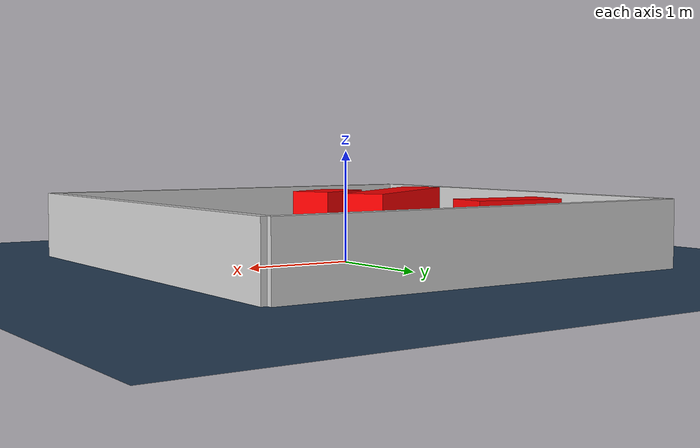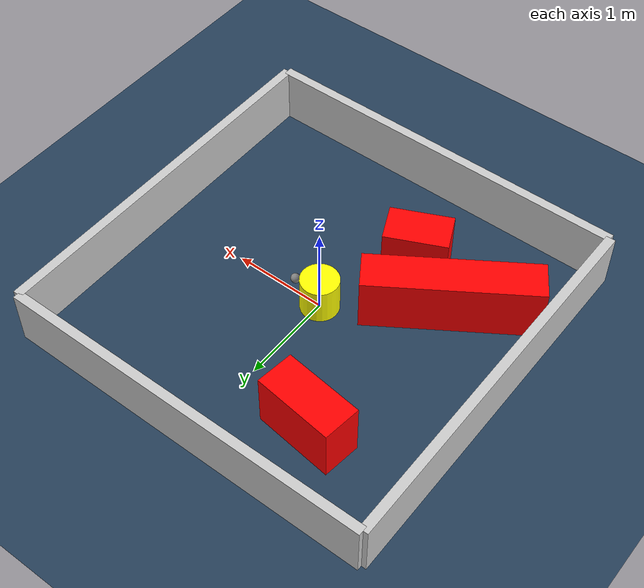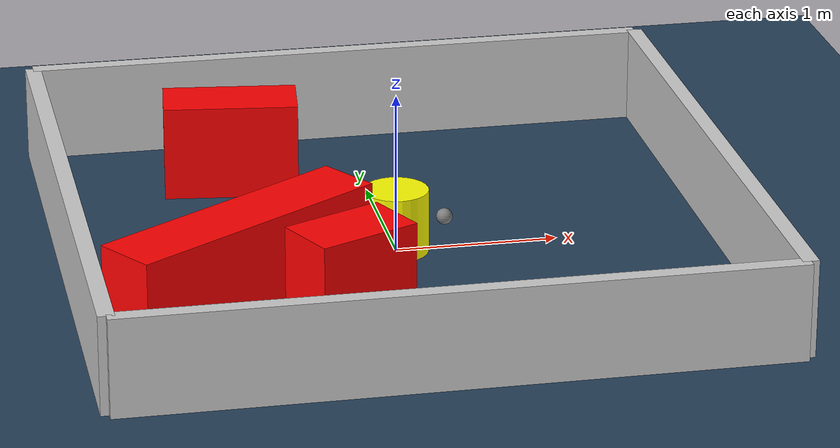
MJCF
<?xml version="1.0" ?>
<mujoco model="generated_environment">
  <option timestep="0.01" integrator="RK4" cone="elliptic"/>
  <default>
    <geom density="1"/>
  </default>
  <asset>
    <texture builtin="gradient" height="3072" rgb1="0.3 0.5 0.7" rgb2="0 0 0" type="skybox" width="512"/>
    <texture builtin="checker" height="300" mark="edge" markrgb="0.8 0.8 0.8" name="groundplane" rgb1="0.2 0.3 0.4" rgb2="0.1 0.2 0.3" type="2d" width="300"/>
    <material name="groundplane" reflectance="0.2" texrepeat="5 5" texture="groundplane" texuniform="true"/>
    <material name="robot" rgba="0.0 1.0 0.0 1"/>
  </asset>
  <worldbody>
    <light dir="0 0 -1" directional="true" pos="0 0 1.5"/>
    <geom condim="4" friction="1.0 0.005 0.001" material="groundplane" name="floor" size="0 0 0.05" type="plane"/>
    <body name="walls">
      <geom name="wall_1" condim="4" pos="-2.0 0.0 0.3" rgba="0.800000011920929 0.800000011920929 0.800000011920929 1.0" size="0.05 2.0 0.3" type="box"/>
      <geom name="wall_2" condim="4" pos="2.0 0.0 0.3" rgba="0.800000011920929 0.800000011920929 0.800000011920929 1.0" size="0.05 2.0 0.3" type="box"/>
      <geom name="wall_3" condim="4" pos="0.0 -2.0 0.3" rgba="0.800000011920929 0.800000011920929 0.800000011920929 1.0" size="2.0 0.05 0.3" type="box"/>
      <geom name="wall_4" condim="4" pos="0.0 2.0 0.3" rgba="0.800000011920929 0.800000011920929 0.800000011920929 1.0" size="2.0 0.05 0.3" type="box"/>
    </body>
    <body name="robot">
      <joint name="joint_x" type="slide" pos="0 0 0" axis="1 0 0"/>
      <joint name="joint_y" type="slide" pos="0 0 0" axis="0 1 0"/>
      <geom name="robot" type="sphere" pos="0.3 0.0 0.2" size="0.05" mass="5." friction="1.0 0.005 0.0001" condim="4" rgba="0.5 0.5 0.5 1.0"/>
      <site name="sensor_ball"/>
    </body>
    <body name="obstacle_movable_1">
      <geom name="obstacle_movable_1" condim="4" pos="0.0 0.0 0.2" euler="0 0 0.0" friction="1.0 0.005 0.001" rgba="1.0 1.0 0.0 1.0" size="0.2 0.2 0.0" type="cylinder" mass="0.1"/>
      <joint type="free"/>
    </body>
    <body name="obstacle_2_static">
      <geom name="obstacle_2_static" condim="4" pos="-1.065045661778208 -0.6871916473807227 0.3" euler="0 0 213.35408053441913" friction="1.0 0.005 0.001" rgba="1 0 0 1" size="0.8833492640547664 0.2 0.3" type="box"/>
    </body>
    <body name="obstacle_3_static">
      <geom name="obstacle_3_static" condim="4" pos="-0.45648653028871977 -0.9814397939046027 0.3" euler="0 0 24.8183589612279" friction="1.0 0.005 0.001" rgba="1 0 0 1" size="0.32663880487682145 0.2 0.3" type="box"/>
    </body>
    <body name="obstacle_4_static">
      <geom name="obstacle_4_static" condim="4" pos="-0.8314543055129755 1.2360940817811679 0.3" euler="0 0 172.97819627323796" friction="1.0 0.005 0.001" rgba="1 0 0 1" size="0.42214399780789574 0.2 0.3" type="box"/>
    </body>
  </worldbody>
  <actuator>
    <motor name="actuator_x" joint="joint_x" gear="1" ctrlrange="-1 1"/>
    <motor name="actuator_y" joint="joint_y" gear="1" ctrlrange="-1 1"/>
  </actuator>
</mujoco>
